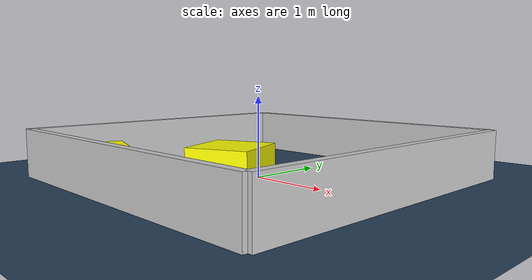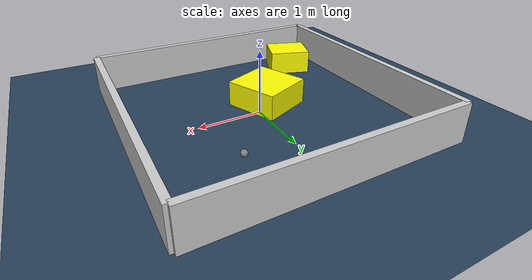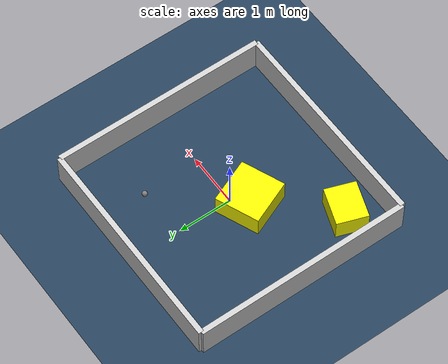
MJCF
<?xml version="1.0" ?>
<mujoco model="generated_environment">
  <option timestep="0.01" integrator="RK4" cone="elliptic"/>
  <default>
    <geom density="1"/>
  </default>
  <asset>
    <texture builtin="gradient" height="3072" rgb1="0.3 0.5 0.7" rgb2="0 0 0" type="skybox" width="512"/>
    <texture builtin="checker" height="300" mark="edge" markrgb="0.8 0.8 0.8" name="groundplane" rgb1="0.2 0.3 0.4" rgb2="0.1 0.2 0.3" type="2d" width="300"/>
    <material name="groundplane" reflectance="0.2" texrepeat="5 5" texture="groundplane" texuniform="true"/>
    <material name="robot" rgba="0.0 1.0 0.0 1"/>
  </asset>
  <worldbody>
    <light dir="0 0 -1" directional="true" pos="0 0 1.5"/>
    <geom condim="4" friction="1.0 0.005 0.001" material="groundplane" name="floor" size="0 0 0.05" type="plane"/>
    <body name="walls">
      <geom name="wall_1" condim="4" pos="-2.0 0.0 0.3" rgba="0.800000011920929 0.800000011920929 0.800000011920929 1.0" size="0.05 2.0 0.3" type="box"/>
      <geom name="wall_2" condim="4" pos="2.0 0.0 0.3" rgba="0.800000011920929 0.800000011920929 0.800000011920929 1.0" size="0.05 2.0 0.3" type="box"/>
      <geom name="wall_3" condim="4" pos="0.0 -2.0 0.3" rgba="0.800000011920929 0.800000011920929 0.800000011920929 1.0" size="2.0 0.05 0.3" type="box"/>
      <geom name="wall_4" condim="4" pos="0.0 2.0 0.3" rgba="0.800000011920929 0.800000011920929 0.800000011920929 1.0" size="2.0 0.05 0.3" type="box"/>
    </body>
    <body name="robot">
      <joint name="joint_x" type="slide" pos="0 0 0" axis="1 0 0"/>
      <joint name="joint_y" type="slide" pos="0 0 0" axis="0 1 0"/>
      <geom name="robot" type="sphere" pos="0.8305929654887203 1.1265411592944496 0.2" size="0.05" mass="5." friction="1.0 0.005 0.0001" condim="4"/>
      <site name="sensor_ball"/>
    </body>
    <body name="obstacle_1_movable">
      <geom name="obstacle_1_movable" condim="4" pos="-0.24516349504955892 -0.22861612302769974 0.2" euler="0 0 202.6370924942707" friction="1.0 0.005 0.001" rgba="1 1 0 1" size="0.41187485715461813 0.4233077922792522 0.2" type="box" mass="0.1"/>
      <joint type="free"/>
    </body>
    <body name="obstacle_2_movable">
      <geom name="obstacle_2_movable" condim="4" pos="-1.341095643045913 -1.369739712513343 0.2" euler="0 0 340.4894065562243" friction="1.0 0.005 0.001" rgba="1 1 0 1" size="0.3495918376278258 0.28542318034589786 0.2" type="box" mass="0.1"/>
      <joint type="free"/>
    </body>
  </worldbody>
  <actuator>
    <motor name="actuator_x" joint="joint_x" gear="1" ctrlrange="-1 1"/>
    <motor name="actuator_y" joint="joint_y" gear="1" ctrlrange="-1 1"/>
  </actuator>
</mujoco>
